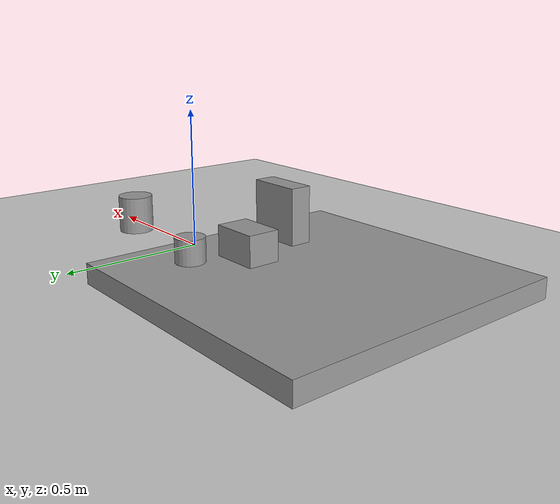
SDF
<sdf version="1.6">
 <world name="default">
  <light name="sun" type="directional">
   <pose>0 0 10 0 -0 0</pose>
   <diffuse>0.8 0.8 0.8 1</diffuse>
   <specular>0.1 0.1 0.1 1</specular>
   <attenuation>
    <range>1000</range>
    <constant>0.9</constant>
    <linear>0.01</linear>
    <quadratic>0.001</quadratic>
   </attenuation>
   <direction>-0.5 0.5 -1</direction>
  </light>
  <model name="ground_plane">
   <static>1</static>
   <link name="link">
    <collision name="collision">
     <geometry><plane><normal>0 0 1</normal><size>100 100</size></plane></geometry>
     <surface><friction><ode><mu>100</mu><mu2>50</mu2></ode></friction></surface>
    </collision>
    <visual name="visual">
     <cast_shadows>0</cast_shadows>
     <geometry><plane><normal>0 0 1</normal><size>100 100</size></plane></geometry>
     <material>
      <script><uri>file://media/materials/scripts/gazebo.material</uri><name>Gazebo/Grey</name></script>
     </material>
    </visual>
   </link>
  </model>
  <gravity>0 0 -9.8</gravity>
  <magnetic_field>6e-06 2.3e-05 -4.2e-05</magnetic_field>
  <atmosphere type="adiabatic"/>
  <physics name="default_physics" default="0" type="ode">
   <max_step_size>0.001</max_step_size>
   <real_time_factor>1</real_time_factor>
   <real_time_update_rate>1000</real_time_update_rate>
  </physics>
  <scene><ambient>0.4 0.4 0.4 1</ambient><background>0.7 0.7 0.7 1</background><shadows>1</shadows></scene>
  <spherical_coordinates>
   <surface_model>EARTH_WGS84</surface_model>
   <latitude_deg>0</latitude_deg>
   <longitude_deg>0</longitude_deg>
   <elevation>0</elevation>
   <heading_deg>0</heading_deg>
  </spherical_coordinates>
  <model name="unit_box_0">
   <pose>-0.62694 -0.013945 0.034696 6e-06 1.2e-05 0.000552</pose>
   <link name="link">
    <inertial>
     <mass>1</mass>
     <inertia>
      <ixx>0.166667</ixx>
      <ixy>0</ixy>
      <ixz>0</ixz>
      <iyy>0.166667</iyy>
      <iyz>0</iyz>
      <izz>0.166667</izz>
     </inertia>
    </inertial>
    <collision name="collision"><geometry><box><size>1 1 0.069438</size></box></geometry></collision>
    <visual name="visual">
     <geometry><box><size>1 1 0.069438</size></box></geometry>
     <material>
      <script><name>Gazebo/Grey</name><uri>file://media/materials/scripts/gazebo.material</uri></script>
     </material>
    </visual>
   </link>
  </model>
  <model name="unit_box_1">
   <pose>-0.313449 -0.161876 0.168569 -0.000164 0.001206 0.000478</pose>
   <link name="link">
    <inertial>
     <mass>1</mass>
     <inertia>
      <ixx>0.166667</ixx>
      <ixy>0</ixy>
      <ixz>0</ixz>
      <iyy>0.166667</iyy>
      <iyz>0</iyz>
      <izz>0.166667</izz>
     </inertia>
    </inertial>
    <collision name="collision"><geometry><box><size>0.194033 0.077038 0.19811</size></box></geometry></collision>
    <visual name="visual">
     <geometry><box><size>0.194033 0.077038 0.19811</size></box></geometry>
     <material>
      <script><name>Gazebo/Grey</name><uri>file://media/materials/scripts/gazebo.material</uri></script>
     </material>
    </visual>
   </link>
  </model>
  <model name="unit_box_2">
   <pose>-0.416635 0.066396 0.121742 -4.2e-05 1.6e-05 0.000728</pose>
   <link name="link">
    <inertial>
     <mass>1</mass>
     <inertia>
      <ixx>0.166667</ixx>
      <ixy>0</ixy>
      <ixz>0</ixz>
      <iyy>0.166667</iyy>
      <iyz>0</iyz>
      <izz>0.166667</izz>
     </inertia>
    </inertial>
    <collision name="collision"><geometry><box><size>0.167065 0.1121 0.104652</size></box></geometry></collision>
    <visual name="visual">
     <geometry><box><size>0.167065 0.1121 0.104652</size></box></geometry>
     <material>
      <script><name>Gazebo/Grey</name><uri>file://media/materials/scripts/gazebo.material</uri></script>
     </material>
    </visual>
   </link>
  </model>
  <model name="unit_cylinder_0">
   <pose>-0.327038 0.226927 0.11137 -0.00025 0.000114 0.000746</pose>
   <link name="link">
    <inertial>
     <mass>1</mass>
     <inertia><ixx>0.145833</ixx><ixy>0</ixy><ixz>0</ixz><iyy>0.145833</iyy><iyz>0</iyz><izz>0.125</izz></inertia>
    </inertial>
    <collision name="collision">
     <geometry><cylinder><radius>0.0497745</radius><length>0.083927</length></cylinder></geometry>
    </collision>
    <visual name="visual">
     <geometry><cylinder><radius>0.0497745</radius><length>0.083927</length></cylinder></geometry>
     <material>
      <script><name>Gazebo/Grey</name><uri>file://media/materials/scripts/gazebo.material</uri></script>
     </material>
    </visual>
   </link>
  </model>
  <model name="unit_cylinder_1">
   <pose>0.31751 0.06442 0.069562 0 -0 0</pose>
   <link name="link">
    <inertial>
     <mass>1</mass>
     <inertia><ixx>0.145833</ixx><ixy>0</ixy><ixz>0</ixz><iyy>0.145833</iyy><iyz>0</iyz><izz>0.125</izz></inertia>
    </inertial>
    <collision name="collision">
     <geometry><cylinder><radius>0.0643375</radius><length>0.139125</length></cylinder></geometry>
    </collision>
    <visual name="visual">
     <geometry><cylinder><radius>0.0643375</radius><length>0.139125</length></cylinder></geometry>
     <material>
      <script><name>Gazebo/Grey</name><uri>file://media/materials/scripts/gazebo.material</uri></script>
     </material>
    </visual>
   </link>
  </model>
 </world>
</sdf>
